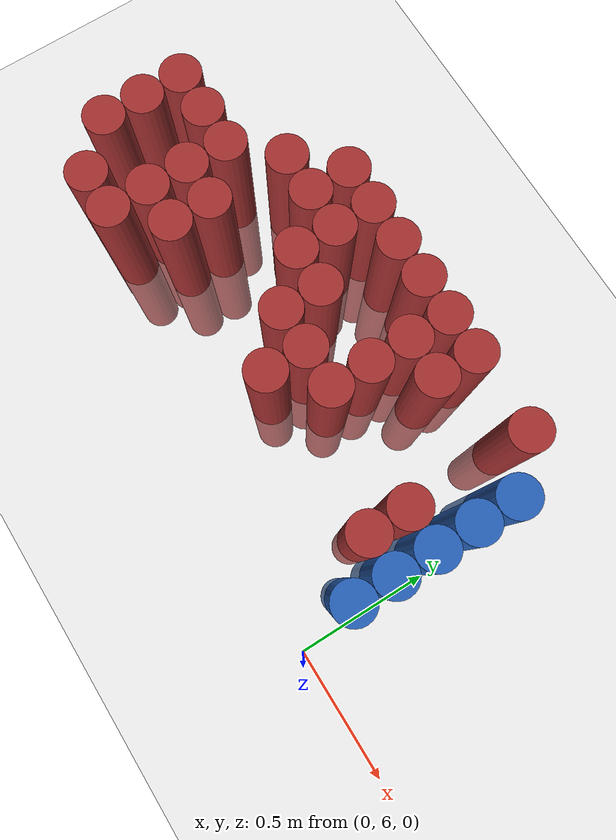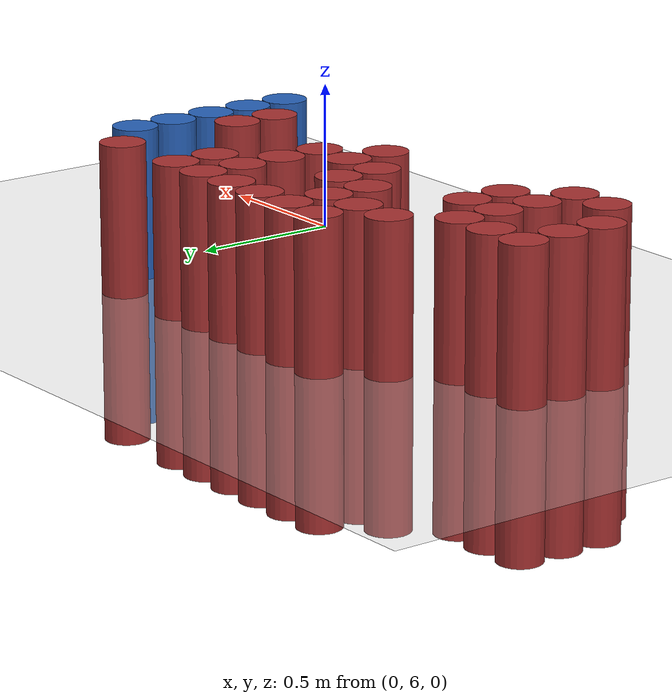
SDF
<sdf version="1.6">
 <world name="default">
  <model name="ground_plane">
   <static>1</static>
   <link name="link">
    <collision name="collision">
     <geometry><plane><normal>0 0 1</normal><size>100 100</size></plane></geometry>
     <surface><friction><ode><mu>100</mu><mu2>50</mu2></ode></friction></surface>
    </collision>
    <visual name="visual">
     <cast_shadows>0</cast_shadows>
     <geometry><plane><normal>0 0 1</normal><size>100 100</size></plane></geometry>
     <material>
      <script><uri>file://media/materials/scripts/gazebo.material</uri><name>Gazebo/Grey</name></script>
     </material>
    </visual>
   </link>
  </model>
  <model name="unit_cylinder_212">
   <static>1</static>
   <pose>-1.875000 6.375000 0.000000 0.000000 0.000000 0.000000</pose>
   <link name="link">
    <inertial>
     <mass>1</mass>
     <inertia><ixx>0.145833</ixx><ixy>0</ixy><ixz>0</ixz><iyy>0.145833</iyy><iyz>0</iyz><izz>0.125</izz></inertia>
    </inertial>
    <collision name="collision">
     <geometry><cylinder><radius>0.075000</radius><length>1</length></cylinder></geometry>
    </collision>
    <visual name="visual">
     <geometry><cylinder><radius>0.075000</radius><length>1</length></cylinder></geometry>
     <material>
      <ambient>0.648000 0.192000 0.192000 1</ambient>
      <diffuse>0.648000 0.192000 0.192000 1</diffuse>
     </material>
     <material>
      <script><name>Gazebo/Grey</name><uri>file://media/materials/scripts/gazebo.material</uri></script>
     </material>
    </visual>
    <sensor name="sensor_contact" type="contact"><contact><collision>collision</collision></contact></sensor>
   </link>
   <plugin filename="gz-sim-touchplugin-system" name="gz::sim::systems::TouchPlugin">
    <target>robot</target>
    <namespace>robot</namespace>
    <time>0.001</time>
    <enabled>true</enabled>
   </plugin>
  </model>
  <model name="unit_cylinder_213">
   <static>1</static>
   <pose>-1.875000 6.525000 0.000000 0.000000 0.000000 0.000000</pose>
   <link name="link">
    <inertial>
     <mass>1</mass>
     <inertia><ixx>0.145833</ixx><ixy>0</ixy><ixz>0</ixz><iyy>0.145833</iyy><iyz>0</iyz><izz>0.125</izz></inertia>
    </inertial>
    <collision name="collision">
     <geometry><cylinder><radius>0.075000</radius><length>1</length></cylinder></geometry>
    </collision>
    <visual name="visual">
     <geometry><cylinder><radius>0.075000</radius><length>1</length></cylinder></geometry>
     <material>
      <ambient>0.648000 0.192000 0.192000 1</ambient>
      <diffuse>0.648000 0.192000 0.192000 1</diffuse>
     </material>
     <material>
      <script><name>Gazebo/Grey</name><uri>file://media/materials/scripts/gazebo.material</uri></script>
     </material>
    </visual>
    <sensor name="sensor_contact" type="contact"><contact><collision>collision</collision></contact></sensor>
   </link>
   <plugin filename="gz-sim-touchplugin-system" name="gz::sim::systems::TouchPlugin">
    <target>robot</target>
    <namespace>robot</namespace>
    <time>0.001</time>
    <enabled>true</enabled>
   </plugin>
  </model>
  <model name="unit_cylinder_214">
   <static>1</static>
   <pose>-1.875000 6.675000 0.000000 0.000000 0.000000 0.000000</pose>
   <link name="link">
    <inertial>
     <mass>1</mass>
     <inertia><ixx>0.145833</ixx><ixy>0</ixy><ixz>0</ixz><iyy>0.145833</iyy><iyz>0</iyz><izz>0.125</izz></inertia>
    </inertial>
    <collision name="collision">
     <geometry><cylinder><radius>0.075000</radius><length>1</length></cylinder></geometry>
    </collision>
    <visual name="visual">
     <geometry><cylinder><radius>0.075000</radius><length>1</length></cylinder></geometry>
     <material>
      <ambient>0.648000 0.192000 0.192000 1</ambient>
      <diffuse>0.648000 0.192000 0.192000 1</diffuse>
     </material>
     <material>
      <script><name>Gazebo/Grey</name><uri>file://media/materials/scripts/gazebo.material</uri></script>
     </material>
    </visual>
    <sensor name="sensor_contact" type="contact"><contact><collision>collision</collision></contact></sensor>
   </link>
   <plugin filename="gz-sim-touchplugin-system" name="gz::sim::systems::TouchPlugin">
    <target>robot</target>
    <namespace>robot</namespace>
    <time>0.001</time>
    <enabled>true</enabled>
   </plugin>
  </model>
  <model name="unit_cylinder_216">
   <static>1</static>
   <pose>-1.725000 6.225000 0.000000 0.000000 0.000000 0.000000</pose>
   <link name="link">
    <inertial>
     <mass>1</mass>
     <inertia><ixx>0.145833</ixx><ixy>0</ixy><ixz>0</ixz><iyy>0.145833</iyy><iyz>0</iyz><izz>0.125</izz></inertia>
    </inertial>
    <collision name="collision">
     <geometry><cylinder><radius>0.075000</radius><length>1</length></cylinder></geometry>
    </collision>
    <visual name="visual">
     <geometry><cylinder><radius>0.075000</radius><length>1</length></cylinder></geometry>
     <material>
      <ambient>0.648000 0.192000 0.192000 1</ambient>
      <diffuse>0.648000 0.192000 0.192000 1</diffuse>
     </material>
     <material>
      <script><name>Gazebo/Grey</name><uri>file://media/materials/scripts/gazebo.material</uri></script>
     </material>
    </visual>
    <sensor name="sensor_contact" type="contact"><contact><collision>collision</collision></contact></sensor>
   </link>
   <plugin filename="gz-sim-touchplugin-system" name="gz::sim::systems::TouchPlugin">
    <target>robot</target>
    <namespace>robot</namespace>
    <time>0.001</time>
    <enabled>true</enabled>
   </plugin>
  </model>
  <model name="unit_cylinder_217">
   <static>1</static>
   <pose>-1.725000 6.675000 0.000000 0.000000 0.000000 0.000000</pose>
   <link name="link">
    <inertial>
     <mass>1</mass>
     <inertia><ixx>0.145833</ixx><ixy>0</ixy><ixz>0</ixz><iyy>0.145833</iyy><iyz>0</iyz><izz>0.125</izz></inertia>
    </inertial>
    <collision name="collision">
     <geometry><cylinder><radius>0.075000</radius><length>1</length></cylinder></geometry>
    </collision>
    <visual name="visual">
     <geometry><cylinder><radius>0.075000</radius><length>1</length></cylinder></geometry>
     <material>
      <ambient>0.648000 0.192000 0.192000 1</ambient>
      <diffuse>0.648000 0.192000 0.192000 1</diffuse>
     </material>
     <material>
      <script><name>Gazebo/Grey</name><uri>file://media/materials/scripts/gazebo.material</uri></script>
     </material>
    </visual>
    <sensor name="sensor_contact" type="contact"><contact><collision>collision</collision></contact></sensor>
   </link>
   <plugin filename="gz-sim-touchplugin-system" name="gz::sim::systems::TouchPlugin">
    <target>robot</target>
    <namespace>robot</namespace>
    <time>0.001</time>
    <enabled>true</enabled>
   </plugin>
  </model>
  <model name="unit_cylinder_219">
   <static>1</static>
   <pose>-1.575000 6.225000 0.000000 0.000000 0.000000 0.000000</pose>
   <link name="link">
    <inertial>
     <mass>1</mass>
     <inertia><ixx>0.145833</ixx><ixy>0</ixy><ixz>0</ixz><iyy>0.145833</iyy><iyz>0</iyz><izz>0.125</izz></inertia>
    </inertial>
    <collision name="collision">
     <geometry><cylinder><radius>0.075000</radius><length>1</length></cylinder></geometry>
    </collision>
    <visual name="visual">
     <geometry><cylinder><radius>0.075000</radius><length>1</length></cylinder></geometry>
     <material>
      <ambient>0.648000 0.192000 0.192000 1</ambient>
      <diffuse>0.648000 0.192000 0.192000 1</diffuse>
     </material>
     <material>
      <script><name>Gazebo/Grey</name><uri>file://media/materials/scripts/gazebo.material</uri></script>
     </material>
    </visual>
    <sensor name="sensor_contact" type="contact"><contact><collision>collision</collision></contact></sensor>
   </link>
   <plugin filename="gz-sim-touchplugin-system" name="gz::sim::systems::TouchPlugin">
    <target>robot</target>
    <namespace>robot</namespace>
    <time>0.001</time>
    <enabled>true</enabled>
   </plugin>
  </model>
  <model name="unit_cylinder_220">
   <static>1</static>
   <pose>-1.575000 6.375000 0.000000 0.000000 0.000000 0.000000</pose>
   <link name="link">
    <inertial>
     <mass>1</mass>
     <inertia><ixx>0.145833</ixx><ixy>0</ixy><ixz>0</ixz><iyy>0.145833</iyy><iyz>0</iyz><izz>0.125</izz></inertia>
    </inertial>
    <collision name="collision">
     <geometry><cylinder><radius>0.075000</radius><length>1</length></cylinder></geometry>
    </collision>
    <visual name="visual">
     <geometry><cylinder><radius>0.075000</radius><length>1</length></cylinder></geometry>
     <material>
      <ambient>0.648000 0.192000 0.192000 1</ambient>
      <diffuse>0.648000 0.192000 0.192000 1</diffuse>
     </material>
     <material>
      <script><name>Gazebo/Grey</name><uri>file://media/materials/scripts/gazebo.material</uri></script>
     </material>
    </visual>
    <sensor name="sensor_contact" type="contact"><contact><collision>collision</collision></contact></sensor>
   </link>
   <plugin filename="gz-sim-touchplugin-system" name="gz::sim::systems::TouchPlugin">
    <target>robot</target>
    <namespace>robot</namespace>
    <time>0.001</time>
    <enabled>true</enabled>
   </plugin>
  </model>
  <model name="unit_cylinder_221">
   <static>1</static>
   <pose>-1.575000 6.525000 0.000000 0.000000 0.000000 0.000000</pose>
   <link name="link">
    <inertial>
     <mass>1</mass>
     <inertia><ixx>0.145833</ixx><ixy>0</ixy><ixz>0</ixz><iyy>0.145833</iyy><iyz>0</iyz><izz>0.125</izz></inertia>
    </inertial>
    <collision name="collision">
     <geometry><cylinder><radius>0.075000</radius><length>1</length></cylinder></geometry>
    </collision>
    <visual name="visual">
     <geometry><cylinder><radius>0.075000</radius><length>1</length></cylinder></geometry>
     <material>
      <ambient>0.648000 0.192000 0.192000 1</ambient>
      <diffuse>0.648000 0.192000 0.192000 1</diffuse>
     </material>
     <material>
      <script><name>Gazebo/Grey</name><uri>file://media/materials/scripts/gazebo.material</uri></script>
     </material>
    </visual>
    <sensor name="sensor_contact" type="contact"><contact><collision>collision</collision></contact></sensor>
   </link>
   <plugin filename="gz-sim-touchplugin-system" name="gz::sim::systems::TouchPlugin">
    <target>robot</target>
    <namespace>robot</namespace>
    <time>0.001</time>
    <enabled>true</enabled>
   </plugin>
  </model>
  <model name="unit_cylinder_222">
   <static>1</static>
   <pose>-1.575000 6.675000 0.000000 0.000000 0.000000 0.000000</pose>
   <link name="link">
    <inertial>
     <mass>1</mass>
     <inertia><ixx>0.145833</ixx><ixy>0</ixy><ixz>0</ixz><iyy>0.145833</iyy><iyz>0</iyz><izz>0.125</izz></inertia>
    </inertial>
    <collision name="collision">
     <geometry><cylinder><radius>0.075000</radius><length>1</length></cylinder></geometry>
    </collision>
    <visual name="visual">
     <geometry><cylinder><radius>0.075000</radius><length>1</length></cylinder></geometry>
     <material>
      <ambient>0.648000 0.192000 0.192000 1</ambient>
      <diffuse>0.648000 0.192000 0.192000 1</diffuse>
     </material>
     <material>
      <script><name>Gazebo/Grey</name><uri>file://media/materials/scripts/gazebo.material</uri></script>
     </material>
    </visual>
    <sensor name="sensor_contact" type="contact"><contact><collision>collision</collision></contact></sensor>
   </link>
   <plugin filename="gz-sim-touchplugin-system" name="gz::sim::systems::TouchPlugin">
    <target>robot</target>
    <namespace>robot</namespace>
    <time>0.001</time>
    <enabled>true</enabled>
   </plugin>
  </model>
  <model name="unit_cylinder_226">
   <static>1</static>
   <pose>-1.425000 6.375000 0.000000 0.000000 0.000000 0.000000</pose>
   <link name="link">
    <inertial>
     <mass>1</mass>
     <inertia><ixx>0.145833</ixx><ixy>0</ixy><ixz>0</ixz><iyy>0.145833</iyy><iyz>0</iyz><izz>0.125</izz></inertia>
    </inertial>
    <collision name="collision">
     <geometry><cylinder><radius>0.075000</radius><length>1</length></cylinder></geometry>
    </collision>
    <visual name="visual">
     <geometry><cylinder><radius>0.075000</radius><length>1</length></cylinder></geometry>
     <material>
      <ambient>0.648000 0.192000 0.192000 1</ambient>
      <diffuse>0.648000 0.192000 0.192000 1</diffuse>
     </material>
     <material>
      <script><name>Gazebo/Grey</name><uri>file://media/materials/scripts/gazebo.material</uri></script>
     </material>
    </visual>
    <sensor name="sensor_contact" type="contact"><contact><collision>collision</collision></contact></sensor>
   </link>
   <plugin filename="gz-sim-touchplugin-system" name="gz::sim::systems::TouchPlugin">
    <target>robot</target>
    <namespace>robot</namespace>
    <time>0.001</time>
    <enabled>true</enabled>
   </plugin>
  </model>
  <model name="unit_cylinder_227">
   <static>1</static>
   <pose>-1.425000 6.525000 0.000000 0.000000 0.000000 0.000000</pose>
   <link name="link">
    <inertial>
     <mass>1</mass>
     <inertia><ixx>0.145833</ixx><ixy>0</ixy><ixz>0</ixz><iyy>0.145833</iyy><iyz>0</iyz><izz>0.125</izz></inertia>
    </inertial>
    <collision name="collision">
     <geometry><cylinder><radius>0.075000</radius><length>1</length></cylinder></geometry>
    </collision>
    <visual name="visual">
     <geometry><cylinder><radius>0.075000</radius><length>1</length></cylinder></geometry>
     <material>
      <ambient>0.648000 0.192000 0.192000 1</ambient>
      <diffuse>0.648000 0.192000 0.192000 1</diffuse>
     </material>
     <material>
      <script><name>Gazebo/Grey</name><uri>file://media/materials/scripts/gazebo.material</uri></script>
     </material>
    </visual>
    <sensor name="sensor_contact" type="contact"><contact><collision>collision</collision></contact></sensor>
   </link>
   <plugin filename="gz-sim-touchplugin-system" name="gz::sim::systems::TouchPlugin">
    <target>robot</target>
    <namespace>robot</namespace>
    <time>0.001</time>
    <enabled>true</enabled>
   </plugin>
  </model>
  <model name="unit_cylinder_228">
   <static>1</static>
   <pose>-1.425000 6.825000 0.000000 0.000000 0.000000 0.000000</pose>
   <link name="link">
    <inertial>
     <mass>1</mass>
     <inertia><ixx>0.145833</ixx><ixy>0</ixy><ixz>0</ixz><iyy>0.145833</iyy><iyz>0</iyz><izz>0.125</izz></inertia>
    </inertial>
    <collision name="collision">
     <geometry><cylinder><radius>0.075000</radius><length>1</length></cylinder></geometry>
    </collision>
    <visual name="visual">
     <geometry><cylinder><radius>0.075000</radius><length>1</length></cylinder></geometry>
     <material>
      <ambient>0.648000 0.192000 0.192000 1</ambient>
      <diffuse>0.648000 0.192000 0.192000 1</diffuse>
     </material>
     <material>
      <script><name>Gazebo/Grey</name><uri>file://media/materials/scripts/gazebo.material</uri></script>
     </material>
    </visual>
    <sensor name="sensor_contact" type="contact"><contact><collision>collision</collision></contact></sensor>
   </link>
   <plugin filename="gz-sim-touchplugin-system" name="gz::sim::systems::TouchPlugin">
    <target>robot</target>
    <namespace>robot</namespace>
    <time>0.001</time>
    <enabled>true</enabled>
   </plugin>
  </model>
  <model name="unit_cylinder_233">
   <static>1</static>
   <pose>-1.275000 6.825000 0.000000 0.000000 0.000000 0.000000</pose>
   <link name="link">
    <inertial>
     <mass>1</mass>
     <inertia><ixx>0.145833</ixx><ixy>0</ixy><ixz>0</ixz><iyy>0.145833</iyy><iyz>0</iyz><izz>0.125</izz></inertia>
    </inertial>
    <collision name="collision">
     <geometry><cylinder><radius>0.075000</radius><length>1</length></cylinder></geometry>
    </collision>
    <visual name="visual">
     <geometry><cylinder><radius>0.075000</radius><length>1</length></cylinder></geometry>
     <material>
      <ambient>0.648000 0.192000 0.192000 1</ambient>
      <diffuse>0.648000 0.192000 0.192000 1</diffuse>
     </material>
     <material>
      <script><name>Gazebo/Grey</name><uri>file://media/materials/scripts/gazebo.material</uri></script>
     </material>
    </visual>
    <sensor name="sensor_contact" type="contact"><contact><collision>collision</collision></contact></sensor>
   </link>
   <plugin filename="gz-sim-touchplugin-system" name="gz::sim::systems::TouchPlugin">
    <target>robot</target>
    <namespace>robot</namespace>
    <time>0.001</time>
    <enabled>true</enabled>
   </plugin>
  </model>
  <model name="unit_cylinder_234">
   <static>1</static>
   <pose>-1.275000 6.975000 0.000000 0.000000 0.000000 0.000000</pose>
   <link name="link">
    <inertial>
     <mass>1</mass>
     <inertia><ixx>0.145833</ixx><ixy>0</ixy><ixz>0</ixz><iyy>0.145833</iyy><iyz>0</iyz><izz>0.125</izz></inertia>
    </inertial>
    <collision name="collision">
     <geometry><cylinder><radius>0.075000</radius><length>1</length></cylinder></geometry>
    </collision>
    <visual name="visual">
     <geometry><cylinder><radius>0.075000</radius><length>1</length></cylinder></geometry>
     <material>
      <ambient>0.648000 0.192000 0.192000 1</ambient>
      <diffuse>0.648000 0.192000 0.192000 1</diffuse>
     </material>
     <material>
      <script><name>Gazebo/Grey</name><uri>file://media/materials/scripts/gazebo.material</uri></script>
     </material>
    </visual>
    <sensor name="sensor_contact" type="contact"><contact><collision>collision</collision></contact></sensor>
   </link>
   <plugin filename="gz-sim-touchplugin-system" name="gz::sim::systems::TouchPlugin">
    <target>robot</target>
    <namespace>robot</namespace>
    <time>0.001</time>
    <enabled>true</enabled>
   </plugin>
  </model>
  <model name="unit_cylinder_241">
   <static>1</static>
   <pose>-1.125000 6.675000 0.000000 0.000000 0.000000 0.000000</pose>
   <link name="link">
    <inertial>
     <mass>1</mass>
     <inertia><ixx>0.145833</ixx><ixy>0</ixy><ixz>0</ixz><iyy>0.145833</iyy><iyz>0</iyz><izz>0.125</izz></inertia>
    </inertial>
    <collision name="collision">
     <geometry><cylinder><radius>0.075000</radius><length>1</length></cylinder></geometry>
    </collision>
    <visual name="visual">
     <geometry><cylinder><radius>0.075000</radius><length>1</length></cylinder></geometry>
     <material>
      <ambient>0.648000 0.192000 0.192000 1</ambient>
      <diffuse>0.648000 0.192000 0.192000 1</diffuse>
     </material>
     <material>
      <script><name>Gazebo/Grey</name><uri>file://media/materials/scripts/gazebo.material</uri></script>
     </material>
    </visual>
    <sensor name="sensor_contact" type="contact"><contact><collision>collision</collision></contact></sensor>
   </link>
   <plugin filename="gz-sim-touchplugin-system" name="gz::sim::systems::TouchPlugin">
    <target>robot</target>
    <namespace>robot</namespace>
    <time>0.001</time>
    <enabled>true</enabled>
   </plugin>
  </model>
  <model name="unit_cylinder_242">
   <static>1</static>
   <pose>-1.125000 6.825000 0.000000 0.000000 0.000000 0.000000</pose>
   <link name="link">
    <inertial>
     <mass>1</mass>
     <inertia><ixx>0.145833</ixx><ixy>0</ixy><ixz>0</ixz><iyy>0.145833</iyy><iyz>0</iyz><izz>0.125</izz></inertia>
    </inertial>
    <collision name="collision">
     <geometry><cylinder><radius>0.075000</radius><length>1</length></cylinder></geometry>
    </collision>
    <visual name="visual">
     <geometry><cylinder><radius>0.075000</radius><length>1</length></cylinder></geometry>
     <material>
      <ambient>0.648000 0.192000 0.192000 1</ambient>
      <diffuse>0.648000 0.192000 0.192000 1</diffuse>
     </material>
     <material>
      <script><name>Gazebo/Grey</name><uri>file://media/materials/scripts/gazebo.material</uri></script>
     </material>
    </visual>
    <sensor name="sensor_contact" type="contact"><contact><collision>collision</collision></contact></sensor>
   </link>
   <plugin filename="gz-sim-touchplugin-system" name="gz::sim::systems::TouchPlugin">
    <target>robot</target>
    <namespace>robot</namespace>
    <time>0.001</time>
    <enabled>true</enabled>
   </plugin>
  </model>
  <model name="unit_cylinder_243">
   <static>1</static>
   <pose>-1.125000 6.975000 0.000000 0.000000 0.000000 0.000000</pose>
   <link name="link">
    <inertial>
     <mass>1</mass>
     <inertia><ixx>0.145833</ixx><ixy>0</ixy><ixz>0</ixz><iyy>0.145833</iyy><iyz>0</iyz><izz>0.125</izz></inertia>
    </inertial>
    <collision name="collision">
     <geometry><cylinder><radius>0.075000</radius><length>1</length></cylinder></geometry>
    </collision>
    <visual name="visual">
     <geometry><cylinder><radius>0.075000</radius><length>1</length></cylinder></geometry>
     <material>
      <ambient>0.648000 0.192000 0.192000 1</ambient>
      <diffuse>0.648000 0.192000 0.192000 1</diffuse>
     </material>
     <material>
      <script><name>Gazebo/Grey</name><uri>file://media/materials/scripts/gazebo.material</uri></script>
     </material>
    </visual>
    <sensor name="sensor_contact" type="contact"><contact><collision>collision</collision></contact></sensor>
   </link>
   <plugin filename="gz-sim-touchplugin-system" name="gz::sim::systems::TouchPlugin">
    <target>robot</target>
    <namespace>robot</namespace>
    <time>0.001</time>
    <enabled>true</enabled>
   </plugin>
  </model>
  <model name="unit_cylinder_252">
   <static>1</static>
   <pose>-0.975000 6.525000 0.000000 0.000000 0.000000 0.000000</pose>
   <link name="link">
    <inertial>
     <mass>1</mass>
     <inertia><ixx>0.145833</ixx><ixy>0</ixy><ixz>0</ixz><iyy>0.145833</iyy><iyz>0</iyz><izz>0.125</izz></inertia>
    </inertial>
    <collision name="collision">
     <geometry><cylinder><radius>0.075000</radius><length>1</length></cylinder></geometry>
    </collision>
    <visual name="visual">
     <geometry><cylinder><radius>0.075000</radius><length>1</length></cylinder></geometry>
     <material>
      <ambient>0.648000 0.192000 0.192000 1</ambient>
      <diffuse>0.648000 0.192000 0.192000 1</diffuse>
     </material>
     <material>
      <script><name>Gazebo/Grey</name><uri>file://media/materials/scripts/gazebo.material</uri></script>
     </material>
    </visual>
    <sensor name="sensor_contact" type="contact"><contact><collision>collision</collision></contact></sensor>
   </link>
   <plugin filename="gz-sim-touchplugin-system" name="gz::sim::systems::TouchPlugin">
    <target>robot</target>
    <namespace>robot</namespace>
    <time>0.001</time>
    <enabled>true</enabled>
   </plugin>
  </model>
  <model name="unit_cylinder_253">
   <static>1</static>
   <pose>-0.975000 6.675000 0.000000 0.000000 0.000000 0.000000</pose>
   <link name="link">
    <inertial>
     <mass>1</mass>
     <inertia><ixx>0.145833</ixx><ixy>0</ixy><ixz>0</ixz><iyy>0.145833</iyy><iyz>0</iyz><izz>0.125</izz></inertia>
    </inertial>
    <collision name="collision">
     <geometry><cylinder><radius>0.075000</radius><length>1</length></cylinder></geometry>
    </collision>
    <visual name="visual">
     <geometry><cylinder><radius>0.075000</radius><length>1</length></cylinder></geometry>
     <material>
      <ambient>0.648000 0.192000 0.192000 1</ambient>
      <diffuse>0.648000 0.192000 0.192000 1</diffuse>
     </material>
     <material>
      <script><name>Gazebo/Grey</name><uri>file://media/materials/scripts/gazebo.material</uri></script>
     </material>
    </visual>
    <sensor name="sensor_contact" type="contact"><contact><collision>collision</collision></contact></sensor>
   </link>
   <plugin filename="gz-sim-touchplugin-system" name="gz::sim::systems::TouchPlugin">
    <target>robot</target>
    <namespace>robot</namespace>
    <time>0.001</time>
    <enabled>true</enabled>
   </plugin>
  </model>
  <model name="unit_cylinder_254">
   <static>1</static>
   <pose>-0.975000 6.975000 0.000000 0.000000 0.000000 0.000000</pose>
   <link name="link">
    <inertial>
     <mass>1</mass>
     <inertia><ixx>0.145833</ixx><ixy>0</ixy><ixz>0</ixz><iyy>0.145833</iyy><iyz>0</iyz><izz>0.125</izz></inertia>
    </inertial>
    <collision name="collision">
     <geometry><cylinder><radius>0.075000</radius><length>1</length></cylinder></geometry>
    </collision>
    <visual name="visual">
     <geometry><cylinder><radius>0.075000</radius><length>1</length></cylinder></geometry>
     <material>
      <ambient>0.648000 0.192000 0.192000 1</ambient>
      <diffuse>0.648000 0.192000 0.192000 1</diffuse>
     </material>
     <material>
      <script><name>Gazebo/Grey</name><uri>file://media/materials/scripts/gazebo.material</uri></script>
     </material>
    </visual>
    <sensor name="sensor_contact" type="contact"><contact><collision>collision</collision></contact></sensor>
   </link>
   <plugin filename="gz-sim-touchplugin-system" name="gz::sim::systems::TouchPlugin">
    <target>robot</target>
    <namespace>robot</namespace>
    <time>0.001</time>
    <enabled>true</enabled>
   </plugin>
  </model>
  <model name="unit_cylinder_260">
   <static>1</static>
   <pose>-0.825000 6.375000 0.000000 0.000000 0.000000 0.000000</pose>
   <link name="link">
    <inertial>
     <mass>1</mass>
     <inertia><ixx>0.145833</ixx><ixy>0</ixy><ixz>0</ixz><iyy>0.145833</iyy><iyz>0</iyz><izz>0.125</izz></inertia>
    </inertial>
    <collision name="collision">
     <geometry><cylinder><radius>0.075000</radius><length>1</length></cylinder></geometry>
    </collision>
    <visual name="visual">
     <geometry><cylinder><radius>0.075000</radius><length>1</length></cylinder></geometry>
     <material>
      <ambient>0.648000 0.192000 0.192000 1</ambient>
      <diffuse>0.648000 0.192000 0.192000 1</diffuse>
     </material>
     <material>
      <script><name>Gazebo/Grey</name><uri>file://media/materials/scripts/gazebo.material</uri></script>
     </material>
    </visual>
    <sensor name="sensor_contact" type="contact"><contact><collision>collision</collision></contact></sensor>
   </link>
   <plugin filename="gz-sim-touchplugin-system" name="gz::sim::systems::TouchPlugin">
    <target>robot</target>
    <namespace>robot</namespace>
    <time>0.001</time>
    <enabled>true</enabled>
   </plugin>
  </model>
  <model name="unit_cylinder_261">
   <static>1</static>
   <pose>-0.825000 6.525000 0.000000 0.000000 0.000000 0.000000</pose>
   <link name="link">
    <inertial>
     <mass>1</mass>
     <inertia><ixx>0.145833</ixx><ixy>0</ixy><ixz>0</ixz><iyy>0.145833</iyy><iyz>0</iyz><izz>0.125</izz></inertia>
    </inertial>
    <collision name="collision">
     <geometry><cylinder><radius>0.075000</radius><length>1</length></cylinder></geometry>
    </collision>
    <visual name="visual">
     <geometry><cylinder><radius>0.075000</radius><length>1</length></cylinder></geometry>
     <material>
      <ambient>0.648000 0.192000 0.192000 1</ambient>
      <diffuse>0.648000 0.192000 0.192000 1</diffuse>
     </material>
     <material>
      <script><name>Gazebo/Grey</name><uri>file://media/materials/scripts/gazebo.material</uri></script>
     </material>
    </visual>
    <sensor name="sensor_contact" type="contact"><contact><collision>collision</collision></contact></sensor>
   </link>
   <plugin filename="gz-sim-touchplugin-system" name="gz::sim::systems::TouchPlugin">
    <target>robot</target>
    <namespace>robot</namespace>
    <time>0.001</time>
    <enabled>true</enabled>
   </plugin>
  </model>
  <model name="unit_cylinder_262">
   <static>1</static>
   <pose>-0.825000 6.975000 0.000000 0.000000 0.000000 0.000000</pose>
   <link name="link">
    <inertial>
     <mass>1</mass>
     <inertia><ixx>0.145833</ixx><ixy>0</ixy><ixz>0</ixz><iyy>0.145833</iyy><iyz>0</iyz><izz>0.125</izz></inertia>
    </inertial>
    <collision name="collision">
     <geometry><cylinder><radius>0.075000</radius><length>1</length></cylinder></geometry>
    </collision>
    <visual name="visual">
     <geometry><cylinder><radius>0.075000</radius><length>1</length></cylinder></geometry>
     <material>
      <ambient>0.648000 0.192000 0.192000 1</ambient>
      <diffuse>0.648000 0.192000 0.192000 1</diffuse>
     </material>
     <material>
      <script><name>Gazebo/Grey</name><uri>file://media/materials/scripts/gazebo.material</uri></script>
     </material>
    </visual>
    <sensor name="sensor_contact" type="contact"><contact><collision>collision</collision></contact></sensor>
   </link>
   <plugin filename="gz-sim-touchplugin-system" name="gz::sim::systems::TouchPlugin">
    <target>robot</target>
    <namespace>robot</namespace>
    <time>0.001</time>
    <enabled>true</enabled>
   </plugin>
  </model>
  <model name="unit_cylinder_266">
   <static>1</static>
   <pose>-0.675000 6.525000 0.000000 0.000000 0.000000 0.000000</pose>
   <link name="link">
    <inertial>
     <mass>1</mass>
     <inertia><ixx>0.145833</ixx><ixy>0</ixy><ixz>0</ixz><iyy>0.145833</iyy><iyz>0</iyz><izz>0.125</izz></inertia>
    </inertial>
    <collision name="collision">
     <geometry><cylinder><radius>0.075000</radius><length>1</length></cylinder></geometry>
    </collision>
    <visual name="visual">
     <geometry><cylinder><radius>0.075000</radius><length>1</length></cylinder></geometry>
     <material>
      <ambient>0.648000 0.192000 0.192000 1</ambient>
      <diffuse>0.648000 0.192000 0.192000 1</diffuse>
     </material>
     <material>
      <script><name>Gazebo/Grey</name><uri>file://media/materials/scripts/gazebo.material</uri></script>
     </material>
    </visual>
    <sensor name="sensor_contact" type="contact"><contact><collision>collision</collision></contact></sensor>
   </link>
   <plugin filename="gz-sim-touchplugin-system" name="gz::sim::systems::TouchPlugin">
    <target>robot</target>
    <namespace>robot</namespace>
    <time>0.001</time>
    <enabled>true</enabled>
   </plugin>
  </model>
  <model name="unit_cylinder_267">
   <static>1</static>
   <pose>-0.675000 6.675000 0.000000 0.000000 0.000000 0.000000</pose>
   <link name="link">
    <inertial>
     <mass>1</mass>
     <inertia><ixx>0.145833</ixx><ixy>0</ixy><ixz>0</ixz><iyy>0.145833</iyy><iyz>0</iyz><izz>0.125</izz></inertia>
    </inertial>
    <collision name="collision">
     <geometry><cylinder><radius>0.075000</radius><length>1</length></cylinder></geometry>
    </collision>
    <visual name="visual">
     <geometry><cylinder><radius>0.075000</radius><length>1</length></cylinder></geometry>
     <material>
      <ambient>0.648000 0.192000 0.192000 1</ambient>
      <diffuse>0.648000 0.192000 0.192000 1</diffuse>
     </material>
     <material>
      <script><name>Gazebo/Grey</name><uri>file://media/materials/scripts/gazebo.material</uri></script>
     </material>
    </visual>
    <sensor name="sensor_contact" type="contact"><contact><collision>collision</collision></contact></sensor>
   </link>
   <plugin filename="gz-sim-touchplugin-system" name="gz::sim::systems::TouchPlugin">
    <target>robot</target>
    <namespace>robot</namespace>
    <time>0.001</time>
    <enabled>true</enabled>
   </plugin>
  </model>
  <model name="unit_cylinder_268">
   <static>1</static>
   <pose>-0.675000 6.825000 0.000000 0.000000 0.000000 0.000000</pose>
   <link name="link">
    <inertial>
     <mass>1</mass>
     <inertia><ixx>0.145833</ixx><ixy>0</ixy><ixz>0</ixz><iyy>0.145833</iyy><iyz>0</iyz><izz>0.125</izz></inertia>
    </inertial>
    <collision name="collision">
     <geometry><cylinder><radius>0.075000</radius><length>1</length></cylinder></geometry>
    </collision>
    <visual name="visual">
     <geometry><cylinder><radius>0.075000</radius><length>1</length></cylinder></geometry>
     <material>
      <ambient>0.648000 0.192000 0.192000 1</ambient>
      <diffuse>0.648000 0.192000 0.192000 1</diffuse>
     </material>
     <material>
      <script><name>Gazebo/Grey</name><uri>file://media/materials/scripts/gazebo.material</uri></script>
     </material>
    </visual>
    <sensor name="sensor_contact" type="contact"><contact><collision>collision</collision></contact></sensor>
   </link>
   <plugin filename="gz-sim-touchplugin-system" name="gz::sim::systems::TouchPlugin">
    <target>robot</target>
    <namespace>robot</namespace>
    <time>0.001</time>
    <enabled>true</enabled>
   </plugin>
  </model>
  <model name="unit_cylinder_269">
   <static>1</static>
   <pose>-0.675000 6.975000 0.000000 0.000000 0.000000 0.000000</pose>
   <link name="link">
    <inertial>
     <mass>1</mass>
     <inertia><ixx>0.145833</ixx><ixy>0</ixy><ixz>0</ixz><iyy>0.145833</iyy><iyz>0</iyz><izz>0.125</izz></inertia>
    </inertial>
    <collision name="collision">
     <geometry><cylinder><radius>0.075000</radius><length>1</length></cylinder></geometry>
    </collision>
    <visual name="visual">
     <geometry><cylinder><radius>0.075000</radius><length>1</length></cylinder></geometry>
     <material>
      <ambient>0.648000 0.192000 0.192000 1</ambient>
      <diffuse>0.648000 0.192000 0.192000 1</diffuse>
     </material>
     <material>
      <script><name>Gazebo/Grey</name><uri>file://media/materials/scripts/gazebo.material</uri></script>
     </material>
    </visual>
    <sensor name="sensor_contact" type="contact"><contact><collision>collision</collision></contact></sensor>
   </link>
   <plugin filename="gz-sim-touchplugin-system" name="gz::sim::systems::TouchPlugin">
    <target>robot</target>
    <namespace>robot</namespace>
    <time>0.001</time>
    <enabled>true</enabled>
   </plugin>
  </model>
  <model name="unit_cylinder_275">
   <static>1</static>
   <pose>-0.525000 6.825000 0.000000 0.000000 0.000000 0.000000</pose>
   <link name="link">
    <inertial>
     <mass>1</mass>
     <inertia><ixx>0.145833</ixx><ixy>0</ixy><ixz>0</ixz><iyy>0.145833</iyy><iyz>0</iyz><izz>0.125</izz></inertia>
    </inertial>
    <collision name="collision">
     <geometry><cylinder><radius>0.075000</radius><length>1</length></cylinder></geometry>
    </collision>
    <visual name="visual">
     <geometry><cylinder><radius>0.075000</radius><length>1</length></cylinder></geometry>
     <material>
      <ambient>0.648000 0.192000 0.192000 1</ambient>
      <diffuse>0.648000 0.192000 0.192000 1</diffuse>
     </material>
     <material>
      <script><name>Gazebo/Grey</name><uri>file://media/materials/scripts/gazebo.material</uri></script>
     </material>
    </visual>
    <sensor name="sensor_contact" type="contact"><contact><collision>collision</collision></contact></sensor>
   </link>
   <plugin filename="gz-sim-touchplugin-system" name="gz::sim::systems::TouchPlugin">
    <target>robot</target>
    <namespace>robot</namespace>
    <time>0.001</time>
    <enabled>true</enabled>
   </plugin>
  </model>
  <model name="unit_cylinder_276">
   <static>1</static>
   <pose>-0.525000 6.975000 0.000000 0.000000 0.000000 0.000000</pose>
   <link name="link">
    <inertial>
     <mass>1</mass>
     <inertia><ixx>0.145833</ixx><ixy>0</ixy><ixz>0</ixz><iyy>0.145833</iyy><iyz>0</iyz><izz>0.125</izz></inertia>
    </inertial>
    <collision name="collision">
     <geometry><cylinder><radius>0.075000</radius><length>1</length></cylinder></geometry>
    </collision>
    <visual name="visual">
     <geometry><cylinder><radius>0.075000</radius><length>1</length></cylinder></geometry>
     <material>
      <ambient>0.648000 0.192000 0.192000 1</ambient>
      <diffuse>0.648000 0.192000 0.192000 1</diffuse>
     </material>
     <material>
      <script><name>Gazebo/Grey</name><uri>file://media/materials/scripts/gazebo.material</uri></script>
     </material>
    </visual>
    <sensor name="sensor_contact" type="contact"><contact><collision>collision</collision></contact></sensor>
   </link>
   <plugin filename="gz-sim-touchplugin-system" name="gz::sim::systems::TouchPlugin">
    <target>robot</target>
    <namespace>robot</namespace>
    <time>0.001</time>
    <enabled>true</enabled>
   </plugin>
  </model>
  <model name="unit_cylinder_292">
   <static>1</static>
   <pose>-0.225000 6.375000 0.000000 0.000000 0.000000 0.000000</pose>
   <link name="link">
    <inertial>
     <mass>1</mass>
     <inertia><ixx>0.145833</ixx><ixy>0</ixy><ixz>0</ixz><iyy>0.145833</iyy><iyz>0</iyz><izz>0.125</izz></inertia>
    </inertial>
    <collision name="collision">
     <geometry><cylinder><radius>0.075000</radius><length>1</length></cylinder></geometry>
    </collision>
    <visual name="visual">
     <geometry><cylinder><radius>0.075000</radius><length>1</length></cylinder></geometry>
     <material>
      <ambient>0.648000 0.192000 0.192000 1</ambient>
      <diffuse>0.648000 0.192000 0.192000 1</diffuse>
     </material>
     <material>
      <script><name>Gazebo/Grey</name><uri>file://media/materials/scripts/gazebo.material</uri></script>
     </material>
    </visual>
    <sensor name="sensor_contact" type="contact"><contact><collision>collision</collision></contact></sensor>
   </link>
   <plugin filename="gz-sim-touchplugin-system" name="gz::sim::systems::TouchPlugin">
    <target>robot</target>
    <namespace>robot</namespace>
    <time>0.001</time>
    <enabled>true</enabled>
   </plugin>
  </model>
  <model name="unit_cylinder_293">
   <static>1</static>
   <pose>-0.225000 6.525000 0.000000 0.000000 0.000000 0.000000</pose>
   <link name="link">
    <inertial>
     <mass>1</mass>
     <inertia><ixx>0.145833</ixx><ixy>0</ixy><ixz>0</ixz><iyy>0.145833</iyy><iyz>0</iyz><izz>0.125</izz></inertia>
    </inertial>
    <collision name="collision">
     <geometry><cylinder><radius>0.075000</radius><length>1</length></cylinder></geometry>
    </collision>
    <visual name="visual">
     <geometry><cylinder><radius>0.075000</radius><length>1</length></cylinder></geometry>
     <material>
      <ambient>0.648000 0.192000 0.192000 1</ambient>
      <diffuse>0.648000 0.192000 0.192000 1</diffuse>
     </material>
     <material>
      <script><name>Gazebo/Grey</name><uri>file://media/materials/scripts/gazebo.material</uri></script>
     </material>
    </visual>
    <sensor name="sensor_contact" type="contact"><contact><collision>collision</collision></contact></sensor>
   </link>
   <plugin filename="gz-sim-touchplugin-system" name="gz::sim::systems::TouchPlugin">
    <target>robot</target>
    <namespace>robot</namespace>
    <time>0.001</time>
    <enabled>true</enabled>
   </plugin>
  </model>
  <model name="unit_cylinder_294">
   <static>1</static>
   <pose>-0.225000 6.975000 0.000000 0.000000 0.000000 0.000000</pose>
   <link name="link">
    <inertial>
     <mass>1</mass>
     <inertia><ixx>0.145833</ixx><ixy>0</ixy><ixz>0</ixz><iyy>0.145833</iyy><iyz>0</iyz><izz>0.125</izz></inertia>
    </inertial>
    <collision name="collision">
     <geometry><cylinder><radius>0.075000</radius><length>1</length></cylinder></geometry>
    </collision>
    <visual name="visual">
     <geometry><cylinder><radius>0.075000</radius><length>1</length></cylinder></geometry>
     <material>
      <ambient>0.648000 0.192000 0.192000 1</ambient>
      <diffuse>0.648000 0.192000 0.192000 1</diffuse>
     </material>
     <material>
      <script><name>Gazebo/Grey</name><uri>file://media/materials/scripts/gazebo.material</uri></script>
     </material>
    </visual>
    <sensor name="sensor_contact" type="contact"><contact><collision>collision</collision></contact></sensor>
   </link>
   <plugin filename="gz-sim-touchplugin-system" name="gz::sim::systems::TouchPlugin">
    <target>robot</target>
    <namespace>robot</namespace>
    <time>0.001</time>
    <enabled>true</enabled>
   </plugin>
  </model>
  <model name="unit_cylinder_310">
   <static>1</static>
   <pose>-0.075000 6.225000 0.000000 0.000000 0.000000 0.000000</pose>
   <link name="link">
    <inertial>
     <mass>1</mass>
     <inertia><ixx>0.145833</ixx><ixy>0</ixy><ixz>0</ixz><iyy>0.145833</iyy><iyz>0</iyz><izz>0.125</izz></inertia>
    </inertial>
    <collision name="collision">
     <geometry><cylinder><radius>0.075000</radius><length>1</length></cylinder></geometry>
    </collision>
    <visual name="visual">
     <geometry><cylinder><radius>0.075000</radius><length>1</length></cylinder></geometry>
     <material>
      <ambient>0.152000 0.379000 0.720000 1</ambient>
      <diffuse>0.152000 0.379000 0.720000 1</diffuse>
     </material>
     <material>
      <script><name>Gazebo/Grey</name><uri>file://media/materials/scripts/gazebo.material</uri></script>
     </material>
    </visual>
    <sensor name="sensor_contact" type="contact"><contact><collision>collision</collision></contact></sensor>
   </link>
   <plugin filename="gz-sim-touchplugin-system" name="gz::sim::systems::TouchPlugin">
    <target>robot</target>
    <namespace>robot</namespace>
    <time>0.001</time>
    <enabled>true</enabled>
   </plugin>
  </model>
  <model name="unit_cylinder_311">
   <static>1</static>
   <pose>-0.075000 6.375000 0.000000 0.000000 0.000000 0.000000</pose>
   <link name="link">
    <inertial>
     <mass>1</mass>
     <inertia><ixx>0.145833</ixx><ixy>0</ixy><ixz>0</ixz><iyy>0.145833</iyy><iyz>0</iyz><izz>0.125</izz></inertia>
    </inertial>
    <collision name="collision">
     <geometry><cylinder><radius>0.075000</radius><length>1</length></cylinder></geometry>
    </collision>
    <visual name="visual">
     <geometry><cylinder><radius>0.075000</radius><length>1</length></cylinder></geometry>
     <material>
      <ambient>0.152000 0.379000 0.720000 1</ambient>
      <diffuse>0.152000 0.379000 0.720000 1</diffuse>
     </material>
     <material>
      <script><name>Gazebo/Grey</name><uri>file://media/materials/scripts/gazebo.material</uri></script>
     </material>
    </visual>
    <sensor name="sensor_contact" type="contact"><contact><collision>collision</collision></contact></sensor>
   </link>
   <plugin filename="gz-sim-touchplugin-system" name="gz::sim::systems::TouchPlugin">
    <target>robot</target>
    <namespace>robot</namespace>
    <time>0.001</time>
    <enabled>true</enabled>
   </plugin>
  </model>
  <model name="unit_cylinder_312">
   <static>1</static>
   <pose>-0.075000 6.525000 0.000000 0.000000 0.000000 0.000000</pose>
   <link name="link">
    <inertial>
     <mass>1</mass>
     <inertia><ixx>0.145833</ixx><ixy>0</ixy><ixz>0</ixz><iyy>0.145833</iyy><iyz>0</iyz><izz>0.125</izz></inertia>
    </inertial>
    <collision name="collision">
     <geometry><cylinder><radius>0.075000</radius><length>1</length></cylinder></geometry>
    </collision>
    <visual name="visual">
     <geometry><cylinder><radius>0.075000</radius><length>1</length></cylinder></geometry>
     <material>
      <ambient>0.152000 0.379000 0.720000 1</ambient>
      <diffuse>0.152000 0.379000 0.720000 1</diffuse>
     </material>
     <material>
      <script><name>Gazebo/Grey</name><uri>file://media/materials/scripts/gazebo.material</uri></script>
     </material>
    </visual>
    <sensor name="sensor_contact" type="contact"><contact><collision>collision</collision></contact></sensor>
   </link>
   <plugin filename="gz-sim-touchplugin-system" name="gz::sim::systems::TouchPlugin">
    <target>robot</target>
    <namespace>robot</namespace>
    <time>0.001</time>
    <enabled>true</enabled>
   </plugin>
  </model>
  <model name="unit_cylinder_313">
   <static>1</static>
   <pose>-0.075000 6.675000 0.000000 0.000000 0.000000 0.000000</pose>
   <link name="link">
    <inertial>
     <mass>1</mass>
     <inertia><ixx>0.145833</ixx><ixy>0</ixy><ixz>0</ixz><iyy>0.145833</iyy><iyz>0</iyz><izz>0.125</izz></inertia>
    </inertial>
    <collision name="collision">
     <geometry><cylinder><radius>0.075000</radius><length>1</length></cylinder></geometry>
    </collision>
    <visual name="visual">
     <geometry><cylinder><radius>0.075000</radius><length>1</length></cylinder></geometry>
     <material>
      <ambient>0.152000 0.379000 0.720000 1</ambient>
      <diffuse>0.152000 0.379000 0.720000 1</diffuse>
     </material>
     <material>
      <script><name>Gazebo/Grey</name><uri>file://media/materials/scripts/gazebo.material</uri></script>
     </material>
    </visual>
    <sensor name="sensor_contact" type="contact"><contact><collision>collision</collision></contact></sensor>
   </link>
   <plugin filename="gz-sim-touchplugin-system" name="gz::sim::systems::TouchPlugin">
    <target>robot</target>
    <namespace>robot</namespace>
    <time>0.001</time>
    <enabled>true</enabled>
   </plugin>
  </model>
  <model name="unit_cylinder_314">
   <static>1</static>
   <pose>-0.075000 6.825000 0.000000 0.000000 0.000000 0.000000</pose>
   <link name="link">
    <inertial>
     <mass>1</mass>
     <inertia><ixx>0.145833</ixx><ixy>0</ixy><ixz>0</ixz><iyy>0.145833</iyy><iyz>0</iyz><izz>0.125</izz></inertia>
    </inertial>
    <collision name="collision">
     <geometry><cylinder><radius>0.075000</radius><length>1</length></cylinder></geometry>
    </collision>
    <visual name="visual">
     <geometry><cylinder><radius>0.075000</radius><length>1</length></cylinder></geometry>
     <material>
      <ambient>0.152000 0.379000 0.720000 1</ambient>
      <diffuse>0.152000 0.379000 0.720000 1</diffuse>
     </material>
     <material>
      <script><name>Gazebo/Grey</name><uri>file://media/materials/scripts/gazebo.material</uri></script>
     </material>
    </visual>
    <sensor name="sensor_contact" type="contact"><contact><collision>collision</collision></contact></sensor>
   </link>
   <plugin filename="gz-sim-touchplugin-system" name="gz::sim::systems::TouchPlugin">
    <target>robot</target>
    <namespace>robot</namespace>
    <time>0.001</time>
    <enabled>true</enabled>
   </plugin>
  </model>
 </world>
</sdf>
